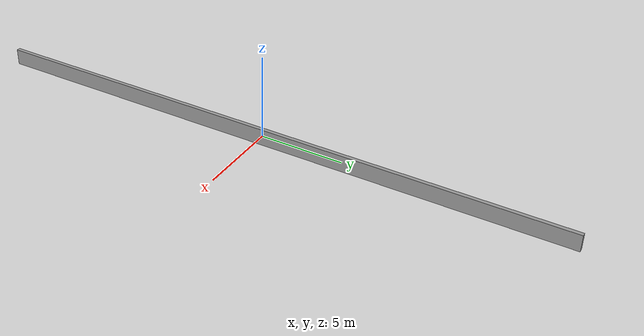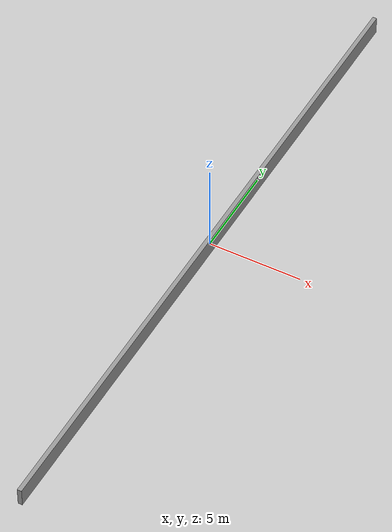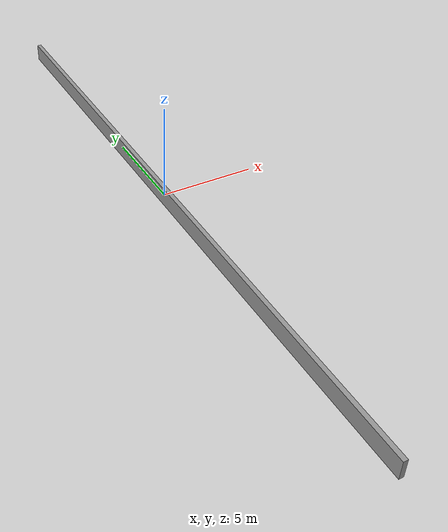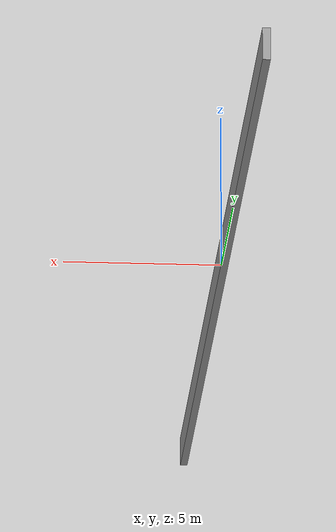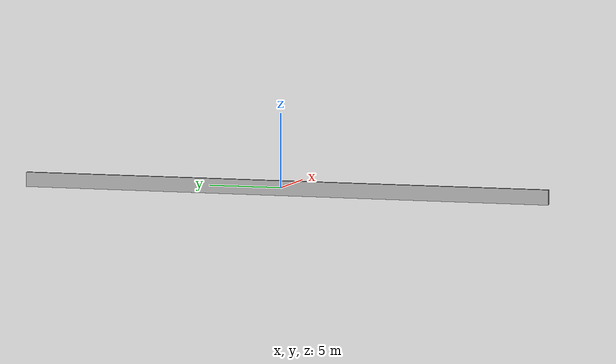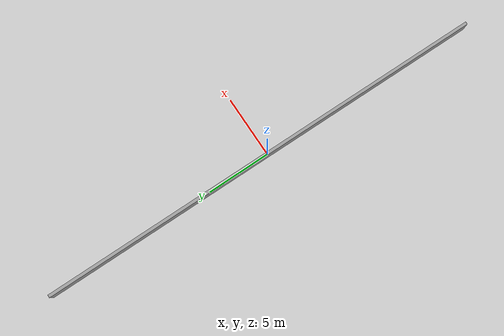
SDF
<?xml version='1.0'?>
<sdf version='1.7'>
  <model name='Wall_long'>
    <link name='link_1'>
      <inertial>
        <mass>8.47488</mass>
        <inertia>
          <ixx>0.732083</ixx>
          <ixy>0</ixy>
          <ixz>0</ixz>
          <iyy>937.978</iyy>
          <iyz>0</iyz>
          <izz>937.324</izz>
        </inertia>
        <pose>0 0 0 0 -0 0</pose>
      </inertial>
      <pose>-1.9e-05 3.7e-05 -0 3.13946 -1e-06 1.57046</pose>
      <visual name='visual'>
        <pose>0 0 0 0 -0 0</pose>
        <geometry>
          <box>
            <size>36.43 0.234423 0.990776</size>
          </box>
        </geometry>
        <material>
          <lighting>1</lighting>
          <script>
            <uri>file://media/materials/scripts/gazebo.material</uri>
            <name>Gazebo/Grey</name>
          </script>
          <shader type='pixel'/>
        </material>
        <transparency>0</transparency>
        <cast_shadows>1</cast_shadows>
      </visual>
      <collision name='collision'>
        <laser_retro>0</laser_retro>
        <max_contacts>10</max_contacts>
        <pose>0 0 0 0 -0 0</pose>
        <geometry>
          <box>
            <size>36.43 0.234423 0.990776</size>
          </box>
        </geometry>
        <surface>
          <friction>
            <ode>
              <mu>1</mu>
              <mu2>1</mu2>
              <fdir1>0 0 0</fdir1>
              <slip1>0</slip1>
              <slip2>0</slip2>
            </ode>
            <torsional>
              <coefficient>1</coefficient>
              <patch_radius>0</patch_radius>
              <surface_radius>0</surface_radius>
              <use_patch_radius>1</use_patch_radius>
              <ode>
                <slip>0</slip>
              </ode>
            </torsional>
          </friction>
          <bounce>
            <restitution_coefficient>0</restitution_coefficient>
            <threshold>1e+06</threshold>
          </bounce>
          <contact>
            <collide_without_contact>0</collide_without_contact>
            <collide_without_contact_bitmask>1</collide_without_contact_bitmask>
            <collide_bitmask>1</collide_bitmask>
            <ode>
              <soft_cfm>0</soft_cfm>
              <soft_erp>0.2</soft_erp>
              <kp>1e+13</kp>
              <kd>1</kd>
              <max_vel>0.01</max_vel>
              <min_depth>0</min_depth>
            </ode>
            <bullet>
              <split_impulse>1</split_impulse>
              <split_impulse_penetration_threshold>-0.01</split_impulse_penetration_threshold>
              <soft_cfm>0</soft_cfm>
              <soft_erp>0.2</soft_erp>
              <kp>1e+13</kp>
              <kd>1</kd>
            </bullet>
          </contact>
        </surface>
      </collision>
    </link>
    <static>1</static>
    <allow_auto_disable>1</allow_auto_disable>
  </model>
</sdf>
